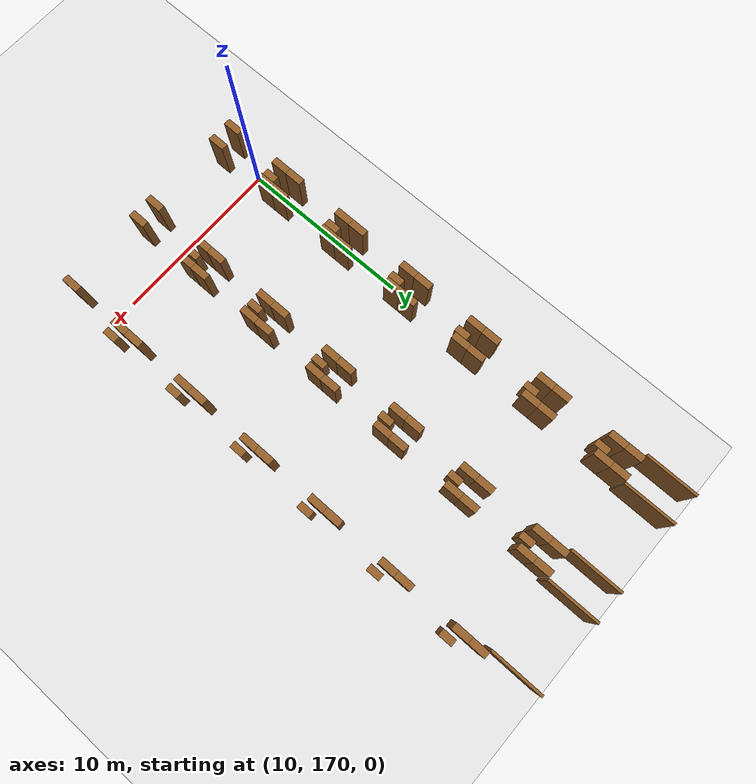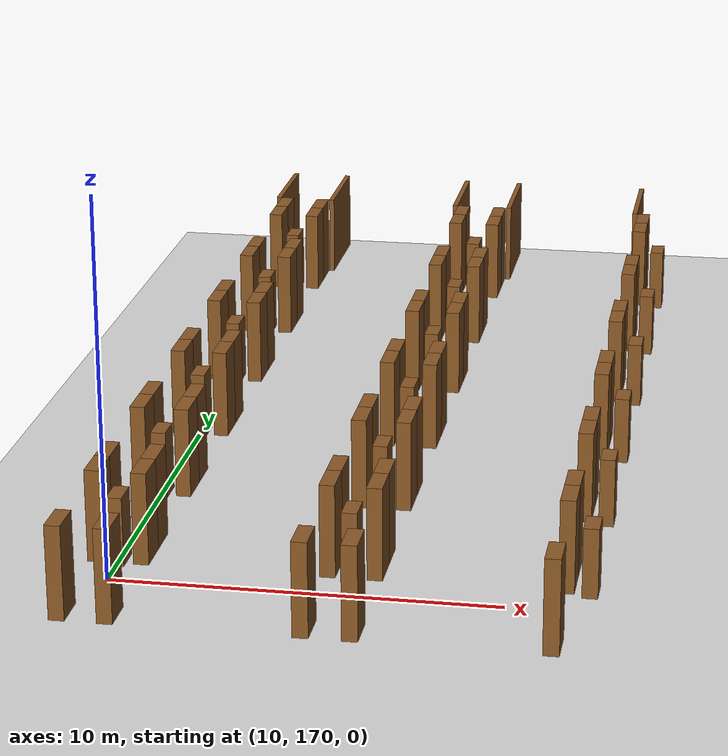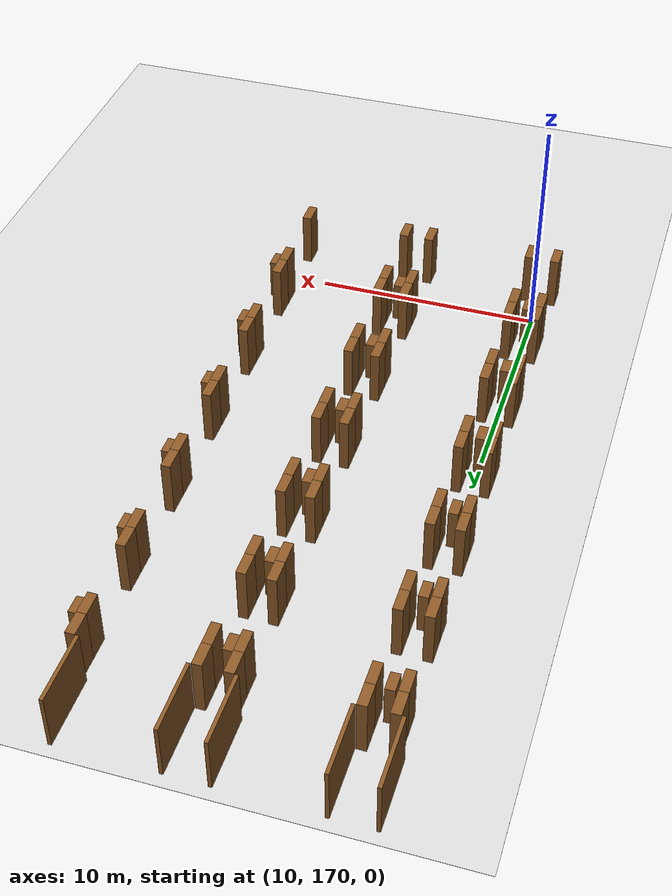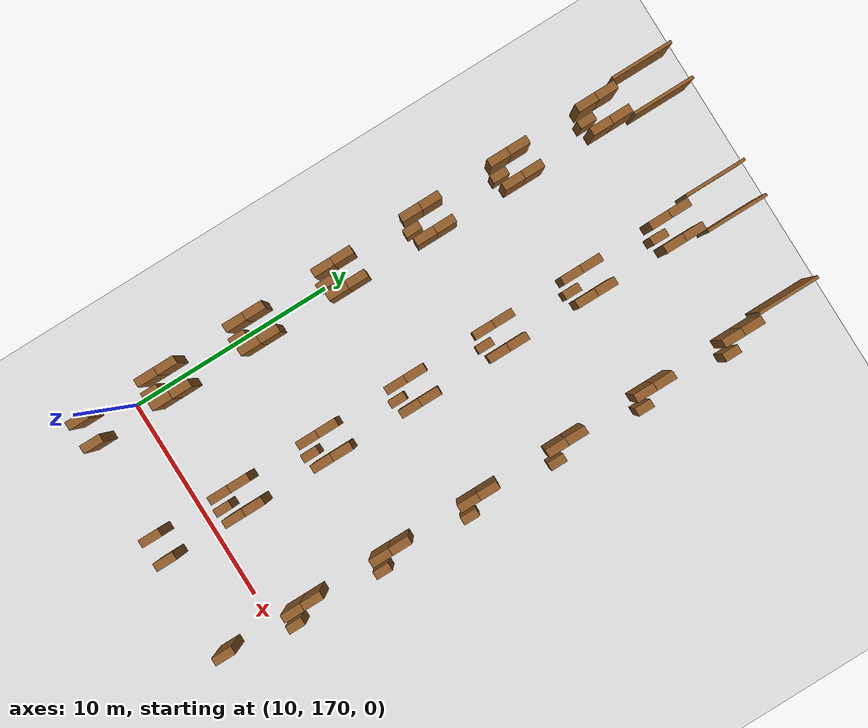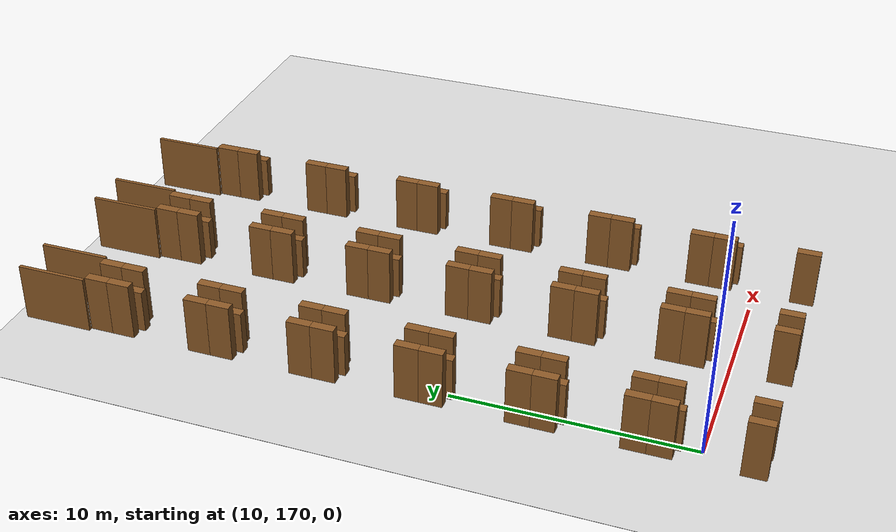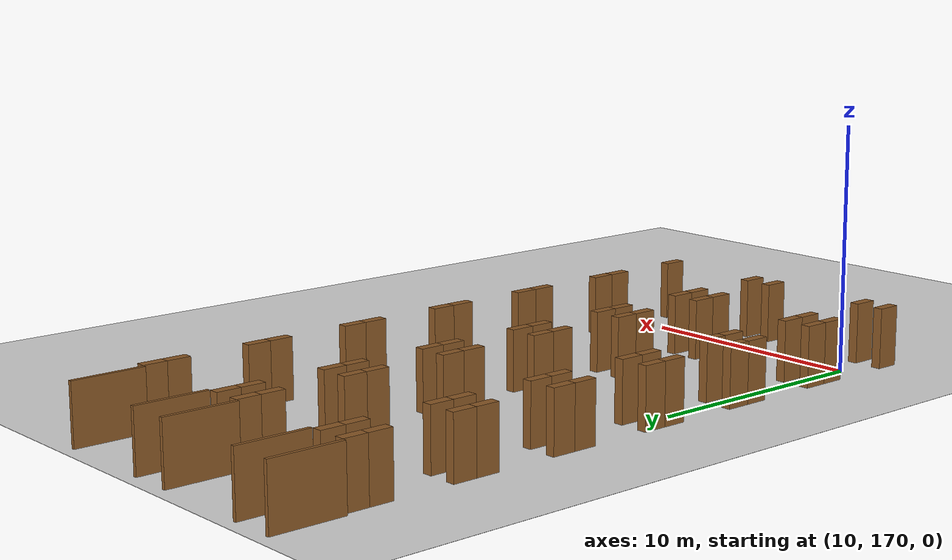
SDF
<sdf version="1.9">
 <world name="realistic_warehouse_150x200m">
  <model name="ground_plane">
   <static>true</static>
   <pose>68.5 102.0 0 0 0 0</pose>
   <link name="ground_link">
    <visual name="ground_visual">
     <geometry><box><size>127.0 194.0 0.01</size></box></geometry>
     <material><ambient>0.85 0.85 0.85 1.0</ambient><diffuse>0.85 0.85 0.85 1.0</diffuse></material>
    </visual>
    <collision name="ground_visual_collision">
     <geometry><box><size>127.0 194.0 0.01</size></box></geometry>
    </collision>
    <collision name="ground_collision">
     <geometry><plane><normal>0 0 1</normal><size>127.0 194.0</size></plane></geometry>
    </collision>
   </link>
  </model>
  <model name="rack_Zone_A_A0_S1_014">
   <static>true</static>
   <pose>9.4 168.0 1.25 0 0 0</pose>
   <link name="rack_Zone_A_A0_S1_014_link">
    <visual name="rack_Zone_A_A0_S1_014_vis">
     <geometry><box><size>0.4 1.0 2.5</size></box></geometry>
     <material><ambient>0.55 0.35 0.15 1.0</ambient><diffuse>0.55 0.35 0.15 1.0</diffuse></material>
    </visual>
    <collision name="rack_Zone_A_A0_S1_014_vis_collision">
     <geometry><box><size>0.4 1.0 2.5</size></box></geometry>
    </collision>
   </link>
  </model>
  <model name="rack_Zone_A_A0_S1_016">
   <static>true</static>
   <pose>10.6 168.0 1.25 0 0 0</pose>
   <link name="rack_Zone_A_A0_S1_016_link">
    <visual name="rack_Zone_A_A0_S1_016_vis">
     <geometry><box><size>0.4 1.0 2.5</size></box></geometry>
     <material><ambient>0.55 0.35 0.15 1.0</ambient><diffuse>0.55 0.35 0.15 1.0</diffuse></material>
    </visual>
    <collision name="rack_Zone_A_A0_S1_016_vis_collision">
     <geometry><box><size>0.4 1.0 2.5</size></box></geometry>
    </collision>
   </link>
  </model>
  <model name="rack_Zone_A_A0_S2_018">
   <static>true</static>
   <pose>9.4 171.5 1.25 0 0 0</pose>
   <link name="rack_Zone_A_A0_S2_018_link">
    <visual name="rack_Zone_A_A0_S2_018_vis">
     <geometry><box><size>0.4 1.0 2.5</size></box></geometry>
     <material><ambient>0.55 0.35 0.15 1.0</ambient><diffuse>0.55 0.35 0.15 1.0</diffuse></material>
    </visual>
    <collision name="rack_Zone_A_A0_S2_018_vis_collision">
     <geometry><box><size>0.4 1.0 2.5</size></box></geometry>
    </collision>
   </link>
  </model>
  <model name="rack_Zone_A_A0_S2_019">
   <static>true</static>
   <pose>9.4 172.5 1.25 0 0 0</pose>
   <link name="rack_Zone_A_A0_S2_019_link">
    <visual name="rack_Zone_A_A0_S2_019_vis">
     <geometry><box><size>0.4 1.0 2.5</size></box></geometry>
     <material><ambient>0.55 0.35 0.15 1.0</ambient><diffuse>0.55 0.35 0.15 1.0</diffuse></material>
    </visual>
    <collision name="rack_Zone_A_A0_S2_019_vis_collision">
     <geometry><box><size>0.4 1.0 2.5</size></box></geometry>
    </collision>
   </link>
  </model>
  <model name="rack_Zone_A_A0_S2_020">
   <static>true</static>
   <pose>10.6 171.5 1.25 0 0 0</pose>
   <link name="rack_Zone_A_A0_S2_020_link">
    <visual name="rack_Zone_A_A0_S2_020_vis">
     <geometry><box><size>0.4 1.0 2.5</size></box></geometry>
     <material><ambient>0.55 0.35 0.15 1.0</ambient><diffuse>0.55 0.35 0.15 1.0</diffuse></material>
    </visual>
    <collision name="rack_Zone_A_A0_S2_020_vis_collision">
     <geometry><box><size>0.4 1.0 2.5</size></box></geometry>
    </collision>
   </link>
  </model>
  <model name="rack_Zone_A_A0_S2_021">
   <static>true</static>
   <pose>10.6 172.5 1.25 0 0 0</pose>
   <link name="rack_Zone_A_A0_S2_021_link">
    <visual name="rack_Zone_A_A0_S2_021_vis">
     <geometry><box><size>0.4 1.0 2.5</size></box></geometry>
     <material><ambient>0.55 0.35 0.15 1.0</ambient><diffuse>0.55 0.35 0.15 1.0</diffuse></material>
    </visual>
    <collision name="rack_Zone_A_A0_S2_021_vis_collision">
     <geometry><box><size>0.4 1.0 2.5</size></box></geometry>
    </collision>
   </link>
  </model>
  <model name="rack_Zone_A_A0_S2_022">
   <static>true</static>
   <pose>10.0 171.2 0.9375 0 0 0</pose>
   <link name="rack_Zone_A_A0_S2_022_link">
    <visual name="rack_Zone_A_A0_S2_022_vis">
     <geometry><box><size>0.4 0.8 1.875</size></box></geometry>
     <material><ambient>0.55 0.35 0.15 1.0</ambient><diffuse>0.55 0.35 0.15 1.0</diffuse></material>
    </visual>
    <collision name="rack_Zone_A_A0_S2_022_vis_collision">
     <geometry><box><size>0.4 0.8 1.875</size></box></geometry>
    </collision>
   </link>
  </model>
  <model name="rack_Zone_A_A0_S3_023">
   <static>true</static>
   <pose>9.4 176.0 1.25 0 0 0</pose>
   <link name="rack_Zone_A_A0_S3_023_link">
    <visual name="rack_Zone_A_A0_S3_023_vis">
     <geometry><box><size>0.4 1.0 2.5</size></box></geometry>
     <material><ambient>0.55 0.35 0.15 1.0</ambient><diffuse>0.55 0.35 0.15 1.0</diffuse></material>
    </visual>
    <collision name="rack_Zone_A_A0_S3_023_vis_collision">
     <geometry><box><size>0.4 1.0 2.5</size></box></geometry>
    </collision>
   </link>
  </model>
  <model name="rack_Zone_A_A0_S3_024">
   <static>true</static>
   <pose>9.4 177.0 1.25 0 0 0</pose>
   <link name="rack_Zone_A_A0_S3_024_link">
    <visual name="rack_Zone_A_A0_S3_024_vis">
     <geometry><box><size>0.4 1.0 2.5</size></box></geometry>
     <material><ambient>0.55 0.35 0.15 1.0</ambient><diffuse>0.55 0.35 0.15 1.0</diffuse></material>
    </visual>
    <collision name="rack_Zone_A_A0_S3_024_vis_collision">
     <geometry><box><size>0.4 1.0 2.5</size></box></geometry>
    </collision>
   </link>
  </model>
  <model name="rack_Zone_A_A0_S3_025">
   <static>true</static>
   <pose>10.6 176.0 1.25 0 0 0</pose>
   <link name="rack_Zone_A_A0_S3_025_link">
    <visual name="rack_Zone_A_A0_S3_025_vis">
     <geometry><box><size>0.4 1.0 2.5</size></box></geometry>
     <material><ambient>0.55 0.35 0.15 1.0</ambient><diffuse>0.55 0.35 0.15 1.0</diffuse></material>
    </visual>
    <collision name="rack_Zone_A_A0_S3_025_vis_collision">
     <geometry><box><size>0.4 1.0 2.5</size></box></geometry>
    </collision>
   </link>
  </model>
  <model name="rack_Zone_A_A0_S3_026">
   <static>true</static>
   <pose>10.6 177.0 1.25 0 0 0</pose>
   <link name="rack_Zone_A_A0_S3_026_link">
    <visual name="rack_Zone_A_A0_S3_026_vis">
     <geometry><box><size>0.4 1.0 2.5</size></box></geometry>
     <material><ambient>0.55 0.35 0.15 1.0</ambient><diffuse>0.55 0.35 0.15 1.0</diffuse></material>
    </visual>
    <collision name="rack_Zone_A_A0_S3_026_vis_collision">
     <geometry><box><size>0.4 1.0 2.5</size></box></geometry>
    </collision>
   </link>
  </model>
  <model name="rack_Zone_A_A0_S3_027">
   <static>true</static>
   <pose>10.0 175.7 0.9375 0 0 0</pose>
   <link name="rack_Zone_A_A0_S3_027_link">
    <visual name="rack_Zone_A_A0_S3_027_vis">
     <geometry><box><size>0.4 0.8 1.875</size></box></geometry>
     <material><ambient>0.55 0.35 0.15 1.0</ambient><diffuse>0.55 0.35 0.15 1.0</diffuse></material>
    </visual>
    <collision name="rack_Zone_A_A0_S3_027_vis_collision">
     <geometry><box><size>0.4 0.8 1.875</size></box></geometry>
    </collision>
   </link>
  </model>
  <model name="rack_Zone_A_A0_S4_028">
   <static>true</static>
   <pose>9.4 180.5 1.25 0 0 0</pose>
   <link name="rack_Zone_A_A0_S4_028_link">
    <visual name="rack_Zone_A_A0_S4_028_vis">
     <geometry><box><size>0.4 1.0 2.5</size></box></geometry>
     <material><ambient>0.55 0.35 0.15 1.0</ambient><diffuse>0.55 0.35 0.15 1.0</diffuse></material>
    </visual>
    <collision name="rack_Zone_A_A0_S4_028_vis_collision">
     <geometry><box><size>0.4 1.0 2.5</size></box></geometry>
    </collision>
   </link>
  </model>
  <model name="rack_Zone_A_A0_S4_029">
   <static>true</static>
   <pose>9.4 181.5 1.25 0 0 0</pose>
   <link name="rack_Zone_A_A0_S4_029_link">
    <visual name="rack_Zone_A_A0_S4_029_vis">
     <geometry><box><size>0.4 1.0 2.5</size></box></geometry>
     <material><ambient>0.55 0.35 0.15 1.0</ambient><diffuse>0.55 0.35 0.15 1.0</diffuse></material>
    </visual>
    <collision name="rack_Zone_A_A0_S4_029_vis_collision">
     <geometry><box><size>0.4 1.0 2.5</size></box></geometry>
    </collision>
   </link>
  </model>
  <model name="rack_Zone_A_A0_S4_030">
   <static>true</static>
   <pose>10.6 180.5 1.25 0 0 0</pose>
   <link name="rack_Zone_A_A0_S4_030_link">
    <visual name="rack_Zone_A_A0_S4_030_vis">
     <geometry><box><size>0.4 1.0 2.5</size></box></geometry>
     <material><ambient>0.55 0.35 0.15 1.0</ambient><diffuse>0.55 0.35 0.15 1.0</diffuse></material>
    </visual>
    <collision name="rack_Zone_A_A0_S4_030_vis_collision">
     <geometry><box><size>0.4 1.0 2.5</size></box></geometry>
    </collision>
   </link>
  </model>
  <model name="rack_Zone_A_A0_S4_031">
   <static>true</static>
   <pose>10.6 181.5 1.25 0 0 0</pose>
   <link name="rack_Zone_A_A0_S4_031_link">
    <visual name="rack_Zone_A_A0_S4_031_vis">
     <geometry><box><size>0.4 1.0 2.5</size></box></geometry>
     <material><ambient>0.55 0.35 0.15 1.0</ambient><diffuse>0.55 0.35 0.15 1.0</diffuse></material>
    </visual>
    <collision name="rack_Zone_A_A0_S4_031_vis_collision">
     <geometry><box><size>0.4 1.0 2.5</size></box></geometry>
    </collision>
   </link>
  </model>
  <model name="rack_Zone_A_A0_S4_032">
   <static>true</static>
   <pose>10.0 180.2 0.9375 0 0 0</pose>
   <link name="rack_Zone_A_A0_S4_032_link">
    <visual name="rack_Zone_A_A0_S4_032_vis">
     <geometry><box><size>0.4 0.8 1.875</size></box></geometry>
     <material><ambient>0.55 0.35 0.15 1.0</ambient><diffuse>0.55 0.35 0.15 1.0</diffuse></material>
    </visual>
    <collision name="rack_Zone_A_A0_S4_032_vis_collision">
     <geometry><box><size>0.4 0.8 1.875</size></box></geometry>
    </collision>
   </link>
  </model>
  <model name="rack_Zone_A_A0_S5_033">
   <static>true</static>
   <pose>9.4 185.0 1.25 0 0 0</pose>
   <link name="rack_Zone_A_A0_S5_033_link">
    <visual name="rack_Zone_A_A0_S5_033_vis">
     <geometry><box><size>0.4 1.0 2.5</size></box></geometry>
     <material><ambient>0.55 0.35 0.15 1.0</ambient><diffuse>0.55 0.35 0.15 1.0</diffuse></material>
    </visual>
    <collision name="rack_Zone_A_A0_S5_033_vis_collision">
     <geometry><box><size>0.4 1.0 2.5</size></box></geometry>
    </collision>
   </link>
  </model>
  <model name="rack_Zone_A_A0_S5_034">
   <static>true</static>
   <pose>9.4 186.0 1.25 0 0 0</pose>
   <link name="rack_Zone_A_A0_S5_034_link">
    <visual name="rack_Zone_A_A0_S5_034_vis">
     <geometry><box><size>0.4 1.0 2.5</size></box></geometry>
     <material><ambient>0.55 0.35 0.15 1.0</ambient><diffuse>0.55 0.35 0.15 1.0</diffuse></material>
    </visual>
    <collision name="rack_Zone_A_A0_S5_034_vis_collision">
     <geometry><box><size>0.4 1.0 2.5</size></box></geometry>
    </collision>
   </link>
  </model>
  <model name="rack_Zone_A_A0_S5_035">
   <static>true</static>
   <pose>10.6 185.0 1.25 0 0 0</pose>
   <link name="rack_Zone_A_A0_S5_035_link">
    <visual name="rack_Zone_A_A0_S5_035_vis">
     <geometry><box><size>0.4 1.0 2.5</size></box></geometry>
     <material><ambient>0.55 0.35 0.15 1.0</ambient><diffuse>0.55 0.35 0.15 1.0</diffuse></material>
    </visual>
    <collision name="rack_Zone_A_A0_S5_035_vis_collision">
     <geometry><box><size>0.4 1.0 2.5</size></box></geometry>
    </collision>
   </link>
  </model>
  <model name="rack_Zone_A_A0_S5_036">
   <static>true</static>
   <pose>10.6 186.0 1.25 0 0 0</pose>
   <link name="rack_Zone_A_A0_S5_036_link">
    <visual name="rack_Zone_A_A0_S5_036_vis">
     <geometry><box><size>0.4 1.0 2.5</size></box></geometry>
     <material><ambient>0.55 0.35 0.15 1.0</ambient><diffuse>0.55 0.35 0.15 1.0</diffuse></material>
    </visual>
    <collision name="rack_Zone_A_A0_S5_036_vis_collision">
     <geometry><box><size>0.4 1.0 2.5</size></box></geometry>
    </collision>
   </link>
  </model>
  <model name="rack_Zone_A_A0_S5_037">
   <static>true</static>
   <pose>10.0 184.7 0.9375 0 0 0</pose>
   <link name="rack_Zone_A_A0_S5_037_link">
    <visual name="rack_Zone_A_A0_S5_037_vis">
     <geometry><box><size>0.4 0.8 1.875</size></box></geometry>
     <material><ambient>0.55 0.35 0.15 1.0</ambient><diffuse>0.55 0.35 0.15 1.0</diffuse></material>
    </visual>
    <collision name="rack_Zone_A_A0_S5_037_vis_collision">
     <geometry><box><size>0.4 0.8 1.875</size></box></geometry>
    </collision>
   </link>
  </model>
  <model name="rack_Zone_A_A0_S6_038">
   <static>true</static>
   <pose>9.4 189.5 1.25 0 0 0</pose>
   <link name="rack_Zone_A_A0_S6_038_link">
    <visual name="rack_Zone_A_A0_S6_038_vis">
     <geometry><box><size>0.4 1.0 2.5</size></box></geometry>
     <material><ambient>0.55 0.35 0.15 1.0</ambient><diffuse>0.55 0.35 0.15 1.0</diffuse></material>
    </visual>
    <collision name="rack_Zone_A_A0_S6_038_vis_collision">
     <geometry><box><size>0.4 1.0 2.5</size></box></geometry>
    </collision>
   </link>
  </model>
  <model name="rack_Zone_A_A0_S6_039">
   <static>true</static>
   <pose>9.4 190.5 1.25 0 0 0</pose>
   <link name="rack_Zone_A_A0_S6_039_link">
    <visual name="rack_Zone_A_A0_S6_039_vis">
     <geometry><box><size>0.4 1.0 2.5</size></box></geometry>
     <material><ambient>0.55 0.35 0.15 1.0</ambient><diffuse>0.55 0.35 0.15 1.0</diffuse></material>
    </visual>
    <collision name="rack_Zone_A_A0_S6_039_vis_collision">
     <geometry><box><size>0.4 1.0 2.5</size></box></geometry>
    </collision>
   </link>
  </model>
  <model name="rack_Zone_A_A0_S6_040">
   <static>true</static>
   <pose>10.6 189.5 1.25 0 0 0</pose>
   <link name="rack_Zone_A_A0_S6_040_link">
    <visual name="rack_Zone_A_A0_S6_040_vis">
     <geometry><box><size>0.4 1.0 2.5</size></box></geometry>
     <material><ambient>0.55 0.35 0.15 1.0</ambient><diffuse>0.55 0.35 0.15 1.0</diffuse></material>
    </visual>
    <collision name="rack_Zone_A_A0_S6_040_vis_collision">
     <geometry><box><size>0.4 1.0 2.5</size></box></geometry>
    </collision>
   </link>
  </model>
  <model name="rack_Zone_A_A0_S6_041">
   <static>true</static>
   <pose>10.6 190.5 1.25 0 0 0</pose>
   <link name="rack_Zone_A_A0_S6_041_link">
    <visual name="rack_Zone_A_A0_S6_041_vis">
     <geometry><box><size>0.4 1.0 2.5</size></box></geometry>
     <material><ambient>0.55 0.35 0.15 1.0</ambient><diffuse>0.55 0.35 0.15 1.0</diffuse></material>
    </visual>
    <collision name="rack_Zone_A_A0_S6_041_vis_collision">
     <geometry><box><size>0.4 1.0 2.5</size></box></geometry>
    </collision>
   </link>
  </model>
  <model name="rack_Zone_A_A0_S6_042">
   <static>true</static>
   <pose>10.0 189.2 0.9375 0 0 0</pose>
   <link name="rack_Zone_A_A0_S6_042_link">
    <visual name="rack_Zone_A_A0_S6_042_vis">
     <geometry><box><size>0.4 0.8 1.875</size></box></geometry>
     <material><ambient>0.55 0.35 0.15 1.0</ambient><diffuse>0.55 0.35 0.15 1.0</diffuse></material>
    </visual>
    <collision name="rack_Zone_A_A0_S6_042_vis_collision">
     <geometry><box><size>0.4 0.8 1.875</size></box></geometry>
    </collision>
   </link>
  </model>
  <model name="rack_Zone_A_A0_S7_043">
   <static>true</static>
   <pose>9.4 194.0 1.25 0 0 0</pose>
   <link name="rack_Zone_A_A0_S7_043_link">
    <visual name="rack_Zone_A_A0_S7_043_vis">
     <geometry><box><size>0.4 1.0 2.5</size></box></geometry>
     <material><ambient>0.55 0.35 0.15 1.0</ambient><diffuse>0.55 0.35 0.15 1.0</diffuse></material>
    </visual>
    <collision name="rack_Zone_A_A0_S7_043_vis_collision">
     <geometry><box><size>0.4 1.0 2.5</size></box></geometry>
    </collision>
   </link>
  </model>
  <model name="rack_Zone_A_A0_S7_044">
   <static>true</static>
   <pose>9.4 195.0 1.25 0 0 0</pose>
   <link name="rack_Zone_A_A0_S7_044_link">
    <visual name="rack_Zone_A_A0_S7_044_vis">
     <geometry><box><size>0.4 1.0 2.5</size></box></geometry>
     <material><ambient>0.55 0.35 0.15 1.0</ambient><diffuse>0.55 0.35 0.15 1.0</diffuse></material>
    </visual>
    <collision name="rack_Zone_A_A0_S7_044_vis_collision">
     <geometry><box><size>0.4 1.0 2.5</size></box></geometry>
    </collision>
   </link>
  </model>
  <model name="rack_Zone_A_A0_S7_045">
   <static>true</static>
   <pose>10.6 194.0 1.25 0 0 0</pose>
   <link name="rack_Zone_A_A0_S7_045_link">
    <visual name="rack_Zone_A_A0_S7_045_vis">
     <geometry><box><size>0.4 1.0 2.5</size></box></geometry>
     <material><ambient>0.55 0.35 0.15 1.0</ambient><diffuse>0.55 0.35 0.15 1.0</diffuse></material>
    </visual>
    <collision name="rack_Zone_A_A0_S7_045_vis_collision">
     <geometry><box><size>0.4 1.0 2.5</size></box></geometry>
    </collision>
   </link>
  </model>
  <model name="rack_Zone_A_A0_S7_046">
   <static>true</static>
   <pose>10.6 195.0 1.25 0 0 0</pose>
   <link name="rack_Zone_A_A0_S7_046_link">
    <visual name="rack_Zone_A_A0_S7_046_vis">
     <geometry><box><size>0.4 1.0 2.5</size></box></geometry>
     <material><ambient>0.55 0.35 0.15 1.0</ambient><diffuse>0.55 0.35 0.15 1.0</diffuse></material>
    </visual>
    <collision name="rack_Zone_A_A0_S7_046_vis_collision">
     <geometry><box><size>0.4 1.0 2.5</size></box></geometry>
    </collision>
   </link>
  </model>
  <model name="rack_Zone_A_A0_S7_047">
   <static>true</static>
   <pose>10.0 193.7 0.9375 0 0 0</pose>
   <link name="rack_Zone_A_A0_S7_047_link">
    <visual name="rack_Zone_A_A0_S7_047_vis">
     <geometry><box><size>0.4 0.8 1.875</size></box></geometry>
     <material><ambient>0.55 0.35 0.15 1.0</ambient><diffuse>0.55 0.35 0.15 1.0</diffuse></material>
    </visual>
    <collision name="rack_Zone_A_A0_S7_047_vis_collision">
     <geometry><box><size>0.4 0.8 1.875</size></box></geometry>
    </collision>
   </link>
  </model>
  <model name="aisle_L_Zone_A_A0_exit_048">
   <static>true</static>
   <pose>9.1 197.0 1.25 0 0 0</pose>
   <link name="aisle_L_Zone_A_A0_exit_048_link">
    <visual name="aisle_L_Zone_A_A0_exit_048_vis">
     <geometry><box><size>0.15 3.0 2.5</size></box></geometry>
     <material><ambient>0.55 0.35 0.15 1.0</ambient><diffuse>0.55 0.35 0.15 1.0</diffuse></material>
    </visual>
    <collision name="aisle_L_Zone_A_A0_exit_048_vis_collision">
     <geometry><box><size>0.15 3.0 2.5</size></box></geometry>
    </collision>
   </link>
  </model>
  <model name="aisle_R_Zone_A_A0_exit_049">
   <static>true</static>
   <pose>10.9 197.0 1.25 0 0 0</pose>
   <link name="aisle_R_Zone_A_A0_exit_049_link">
    <visual name="aisle_R_Zone_A_A0_exit_049_vis">
     <geometry><box><size>0.15 3.0 2.5</size></box></geometry>
     <material><ambient>0.55 0.35 0.15 1.0</ambient><diffuse>0.55 0.35 0.15 1.0</diffuse></material>
    </visual>
    <collision name="aisle_R_Zone_A_A0_exit_049_vis_collision">
     <geometry><box><size>0.15 3.0 2.5</size></box></geometry>
    </collision>
   </link>
  </model>
  <model name="rack_Zone_A_A1_S1_058">
   <static>true</static>
   <pose>15.4 168.0 1.25 0 0 0</pose>
   <link name="rack_Zone_A_A1_S1_058_link">
    <visual name="rack_Zone_A_A1_S1_058_vis">
     <geometry><box><size>0.4 1.0 2.5</size></box></geometry>
     <material><ambient>0.55 0.35 0.15 1.0</ambient><diffuse>0.55 0.35 0.15 1.0</diffuse></material>
    </visual>
    <collision name="rack_Zone_A_A1_S1_058_vis_collision">
     <geometry><box><size>0.4 1.0 2.5</size></box></geometry>
    </collision>
   </link>
  </model>
  <model name="rack_Zone_A_A1_S1_060">
   <static>true</static>
   <pose>16.6 168.0 1.25 0 0 0</pose>
   <link name="rack_Zone_A_A1_S1_060_link">
    <visual name="rack_Zone_A_A1_S1_060_vis">
     <geometry><box><size>0.4 1.0 2.5</size></box></geometry>
     <material><ambient>0.55 0.35 0.15 1.0</ambient><diffuse>0.55 0.35 0.15 1.0</diffuse></material>
    </visual>
    <collision name="rack_Zone_A_A1_S1_060_vis_collision">
     <geometry><box><size>0.4 1.0 2.5</size></box></geometry>
    </collision>
   </link>
  </model>
  <model name="rack_Zone_A_A1_S2_062">
   <static>true</static>
   <pose>15.4 171.5 1.25 0 0 0</pose>
   <link name="rack_Zone_A_A1_S2_062_link">
    <visual name="rack_Zone_A_A1_S2_062_vis">
     <geometry><box><size>0.4 1.0 2.5</size></box></geometry>
     <material><ambient>0.55 0.35 0.15 1.0</ambient><diffuse>0.55 0.35 0.15 1.0</diffuse></material>
    </visual>
    <collision name="rack_Zone_A_A1_S2_062_vis_collision">
     <geometry><box><size>0.4 1.0 2.5</size></box></geometry>
    </collision>
   </link>
  </model>
  <model name="rack_Zone_A_A1_S2_063">
   <static>true</static>
   <pose>15.4 172.5 1.25 0 0 0</pose>
   <link name="rack_Zone_A_A1_S2_063_link">
    <visual name="rack_Zone_A_A1_S2_063_vis">
     <geometry><box><size>0.4 1.0 2.5</size></box></geometry>
     <material><ambient>0.55 0.35 0.15 1.0</ambient><diffuse>0.55 0.35 0.15 1.0</diffuse></material>
    </visual>
    <collision name="rack_Zone_A_A1_S2_063_vis_collision">
     <geometry><box><size>0.4 1.0 2.5</size></box></geometry>
    </collision>
   </link>
  </model>
  <model name="rack_Zone_A_A1_S2_064">
   <static>true</static>
   <pose>16.6 171.5 1.25 0 0 0</pose>
   <link name="rack_Zone_A_A1_S2_064_link">
    <visual name="rack_Zone_A_A1_S2_064_vis">
     <geometry><box><size>0.4 1.0 2.5</size></box></geometry>
     <material><ambient>0.55 0.35 0.15 1.0</ambient><diffuse>0.55 0.35 0.15 1.0</diffuse></material>
    </visual>
    <collision name="rack_Zone_A_A1_S2_064_vis_collision">
     <geometry><box><size>0.4 1.0 2.5</size></box></geometry>
    </collision>
   </link>
  </model>
  <model name="rack_Zone_A_A1_S2_065">
   <static>true</static>
   <pose>16.6 172.5 1.25 0 0 0</pose>
   <link name="rack_Zone_A_A1_S2_065_link">
    <visual name="rack_Zone_A_A1_S2_065_vis">
     <geometry><box><size>0.4 1.0 2.5</size></box></geometry>
     <material><ambient>0.55 0.35 0.15 1.0</ambient><diffuse>0.55 0.35 0.15 1.0</diffuse></material>
    </visual>
    <collision name="rack_Zone_A_A1_S2_065_vis_collision">
     <geometry><box><size>0.4 1.0 2.5</size></box></geometry>
    </collision>
   </link>
  </model>
  <model name="rack_Zone_A_A1_S2_066">
   <static>true</static>
   <pose>16.0 171.2 0.9375 0 0 0</pose>
   <link name="rack_Zone_A_A1_S2_066_link">
    <visual name="rack_Zone_A_A1_S2_066_vis">
     <geometry><box><size>0.4 0.8 1.875</size></box></geometry>
     <material><ambient>0.55 0.35 0.15 1.0</ambient><diffuse>0.55 0.35 0.15 1.0</diffuse></material>
    </visual>
    <collision name="rack_Zone_A_A1_S2_066_vis_collision">
     <geometry><box><size>0.4 0.8 1.875</size></box></geometry>
    </collision>
   </link>
  </model>
  <model name="rack_Zone_A_A1_S3_067">
   <static>true</static>
   <pose>15.4 176.0 1.25 0 0 0</pose>
   <link name="rack_Zone_A_A1_S3_067_link">
    <visual name="rack_Zone_A_A1_S3_067_vis">
     <geometry><box><size>0.4 1.0 2.5</size></box></geometry>
     <material><ambient>0.55 0.35 0.15 1.0</ambient><diffuse>0.55 0.35 0.15 1.0</diffuse></material>
    </visual>
    <collision name="rack_Zone_A_A1_S3_067_vis_collision">
     <geometry><box><size>0.4 1.0 2.5</size></box></geometry>
    </collision>
   </link>
  </model>
  <model name="rack_Zone_A_A1_S3_068">
   <static>true</static>
   <pose>15.4 177.0 1.25 0 0 0</pose>
   <link name="rack_Zone_A_A1_S3_068_link">
    <visual name="rack_Zone_A_A1_S3_068_vis">
     <geometry><box><size>0.4 1.0 2.5</size></box></geometry>
     <material><ambient>0.55 0.35 0.15 1.0</ambient><diffuse>0.55 0.35 0.15 1.0</diffuse></material>
    </visual>
    <collision name="rack_Zone_A_A1_S3_068_vis_collision">
     <geometry><box><size>0.4 1.0 2.5</size></box></geometry>
    </collision>
   </link>
  </model>
  <model name="rack_Zone_A_A1_S3_069">
   <static>true</static>
   <pose>16.6 176.0 1.25 0 0 0</pose>
   <link name="rack_Zone_A_A1_S3_069_link">
    <visual name="rack_Zone_A_A1_S3_069_vis">
     <geometry><box><size>0.4 1.0 2.5</size></box></geometry>
     <material><ambient>0.55 0.35 0.15 1.0</ambient><diffuse>0.55 0.35 0.15 1.0</diffuse></material>
    </visual>
    <collision name="rack_Zone_A_A1_S3_069_vis_collision">
     <geometry><box><size>0.4 1.0 2.5</size></box></geometry>
    </collision>
   </link>
  </model>
  <model name="rack_Zone_A_A1_S3_070">
   <static>true</static>
   <pose>16.6 177.0 1.25 0 0 0</pose>
   <link name="rack_Zone_A_A1_S3_070_link">
    <visual name="rack_Zone_A_A1_S3_070_vis">
     <geometry><box><size>0.4 1.0 2.5</size></box></geometry>
     <material><ambient>0.55 0.35 0.15 1.0</ambient><diffuse>0.55 0.35 0.15 1.0</diffuse></material>
    </visual>
    <collision name="rack_Zone_A_A1_S3_070_vis_collision">
     <geometry><box><size>0.4 1.0 2.5</size></box></geometry>
    </collision>
   </link>
  </model>
  <model name="rack_Zone_A_A1_S3_071">
   <static>true</static>
   <pose>16.0 175.7 0.9375 0 0 0</pose>
   <link name="rack_Zone_A_A1_S3_071_link">
    <visual name="rack_Zone_A_A1_S3_071_vis">
     <geometry><box><size>0.4 0.8 1.875</size></box></geometry>
     <material><ambient>0.55 0.35 0.15 1.0</ambient><diffuse>0.55 0.35 0.15 1.0</diffuse></material>
    </visual>
    <collision name="rack_Zone_A_A1_S3_071_vis_collision">
     <geometry><box><size>0.4 0.8 1.875</size></box></geometry>
    </collision>
   </link>
  </model>
  <model name="rack_Zone_A_A1_S4_072">
   <static>true</static>
   <pose>15.4 180.5 1.25 0 0 0</pose>
   <link name="rack_Zone_A_A1_S4_072_link">
    <visual name="rack_Zone_A_A1_S4_072_vis">
     <geometry><box><size>0.4 1.0 2.5</size></box></geometry>
     <material><ambient>0.55 0.35 0.15 1.0</ambient><diffuse>0.55 0.35 0.15 1.0</diffuse></material>
    </visual>
    <collision name="rack_Zone_A_A1_S4_072_vis_collision">
     <geometry><box><size>0.4 1.0 2.5</size></box></geometry>
    </collision>
   </link>
  </model>
  <model name="rack_Zone_A_A1_S4_073">
   <static>true</static>
   <pose>15.4 181.5 1.25 0 0 0</pose>
   <link name="rack_Zone_A_A1_S4_073_link">
    <visual name="rack_Zone_A_A1_S4_073_vis">
     <geometry><box><size>0.4 1.0 2.5</size></box></geometry>
     <material><ambient>0.55 0.35 0.15 1.0</ambient><diffuse>0.55 0.35 0.15 1.0</diffuse></material>
    </visual>
    <collision name="rack_Zone_A_A1_S4_073_vis_collision">
     <geometry><box><size>0.4 1.0 2.5</size></box></geometry>
    </collision>
   </link>
  </model>
  <model name="rack_Zone_A_A1_S4_074">
   <static>true</static>
   <pose>16.6 180.5 1.25 0 0 0</pose>
   <link name="rack_Zone_A_A1_S4_074_link">
    <visual name="rack_Zone_A_A1_S4_074_vis">
     <geometry><box><size>0.4 1.0 2.5</size></box></geometry>
     <material><ambient>0.55 0.35 0.15 1.0</ambient><diffuse>0.55 0.35 0.15 1.0</diffuse></material>
    </visual>
    <collision name="rack_Zone_A_A1_S4_074_vis_collision">
     <geometry><box><size>0.4 1.0 2.5</size></box></geometry>
    </collision>
   </link>
  </model>
  <model name="rack_Zone_A_A1_S4_075">
   <static>true</static>
   <pose>16.6 181.5 1.25 0 0 0</pose>
   <link name="rack_Zone_A_A1_S4_075_link">
    <visual name="rack_Zone_A_A1_S4_075_vis">
     <geometry><box><size>0.4 1.0 2.5</size></box></geometry>
     <material><ambient>0.55 0.35 0.15 1.0</ambient><diffuse>0.55 0.35 0.15 1.0</diffuse></material>
    </visual>
    <collision name="rack_Zone_A_A1_S4_075_vis_collision">
     <geometry><box><size>0.4 1.0 2.5</size></box></geometry>
    </collision>
   </link>
  </model>
  <model name="rack_Zone_A_A1_S4_076">
   <static>true</static>
   <pose>16.0 180.2 0.9375 0 0 0</pose>
   <link name="rack_Zone_A_A1_S4_076_link">
    <visual name="rack_Zone_A_A1_S4_076_vis">
     <geometry><box><size>0.4 0.8 1.875</size></box></geometry>
     <material><ambient>0.55 0.35 0.15 1.0</ambient><diffuse>0.55 0.35 0.15 1.0</diffuse></material>
    </visual>
    <collision name="rack_Zone_A_A1_S4_076_vis_collision">
     <geometry><box><size>0.4 0.8 1.875</size></box></geometry>
    </collision>
   </link>
  </model>
  <model name="rack_Zone_A_A1_S5_077">
   <static>true</static>
   <pose>15.4 185.0 1.25 0 0 0</pose>
   <link name="rack_Zone_A_A1_S5_077_link">
    <visual name="rack_Zone_A_A1_S5_077_vis">
     <geometry><box><size>0.4 1.0 2.5</size></box></geometry>
     <material><ambient>0.55 0.35 0.15 1.0</ambient><diffuse>0.55 0.35 0.15 1.0</diffuse></material>
    </visual>
    <collision name="rack_Zone_A_A1_S5_077_vis_collision">
     <geometry><box><size>0.4 1.0 2.5</size></box></geometry>
    </collision>
   </link>
  </model>
  <model name="rack_Zone_A_A1_S5_078">
   <static>true</static>
   <pose>15.4 186.0 1.25 0 0 0</pose>
   <link name="rack_Zone_A_A1_S5_078_link">
    <visual name="rack_Zone_A_A1_S5_078_vis">
     <geometry><box><size>0.4 1.0 2.5</size></box></geometry>
     <material><ambient>0.55 0.35 0.15 1.0</ambient><diffuse>0.55 0.35 0.15 1.0</diffuse></material>
    </visual>
    <collision name="rack_Zone_A_A1_S5_078_vis_collision">
     <geometry><box><size>0.4 1.0 2.5</size></box></geometry>
    </collision>
   </link>
  </model>
  <model name="rack_Zone_A_A1_S5_079">
   <static>true</static>
   <pose>16.6 185.0 1.25 0 0 0</pose>
   <link name="rack_Zone_A_A1_S5_079_link">
    <visual name="rack_Zone_A_A1_S5_079_vis">
     <geometry><box><size>0.4 1.0 2.5</size></box></geometry>
     <material><ambient>0.55 0.35 0.15 1.0</ambient><diffuse>0.55 0.35 0.15 1.0</diffuse></material>
    </visual>
    <collision name="rack_Zone_A_A1_S5_079_vis_collision">
     <geometry><box><size>0.4 1.0 2.5</size></box></geometry>
    </collision>
   </link>
  </model>
  <model name="rack_Zone_A_A1_S5_080">
   <static>true</static>
   <pose>16.6 186.0 1.25 0 0 0</pose>
   <link name="rack_Zone_A_A1_S5_080_link">
    <visual name="rack_Zone_A_A1_S5_080_vis">
     <geometry><box><size>0.4 1.0 2.5</size></box></geometry>
     <material><ambient>0.55 0.35 0.15 1.0</ambient><diffuse>0.55 0.35 0.15 1.0</diffuse></material>
    </visual>
    <collision name="rack_Zone_A_A1_S5_080_vis_collision">
     <geometry><box><size>0.4 1.0 2.5</size></box></geometry>
    </collision>
   </link>
  </model>
  <model name="rack_Zone_A_A1_S5_081">
   <static>true</static>
   <pose>16.0 184.7 0.9375 0 0 0</pose>
   <link name="rack_Zone_A_A1_S5_081_link">
    <visual name="rack_Zone_A_A1_S5_081_vis">
     <geometry><box><size>0.4 0.8 1.875</size></box></geometry>
     <material><ambient>0.55 0.35 0.15 1.0</ambient><diffuse>0.55 0.35 0.15 1.0</diffuse></material>
    </visual>
    <collision name="rack_Zone_A_A1_S5_081_vis_collision">
     <geometry><box><size>0.4 0.8 1.875</size></box></geometry>
    </collision>
   </link>
  </model>
  <model name="rack_Zone_A_A1_S6_082">
   <static>true</static>
   <pose>15.4 189.5 1.25 0 0 0</pose>
   <link name="rack_Zone_A_A1_S6_082_link">
    <visual name="rack_Zone_A_A1_S6_082_vis">
     <geometry><box><size>0.4 1.0 2.5</size></box></geometry>
     <material><ambient>0.55 0.35 0.15 1.0</ambient><diffuse>0.55 0.35 0.15 1.0</diffuse></material>
    </visual>
    <collision name="rack_Zone_A_A1_S6_082_vis_collision">
     <geometry><box><size>0.4 1.0 2.5</size></box></geometry>
    </collision>
   </link>
  </model>
  <model name="rack_Zone_A_A1_S6_083">
   <static>true</static>
   <pose>15.4 190.5 1.25 0 0 0</pose>
   <link name="rack_Zone_A_A1_S6_083_link">
    <visual name="rack_Zone_A_A1_S6_083_vis">
     <geometry><box><size>0.4 1.0 2.5</size></box></geometry>
     <material><ambient>0.55 0.35 0.15 1.0</ambient><diffuse>0.55 0.35 0.15 1.0</diffuse></material>
    </visual>
    <collision name="rack_Zone_A_A1_S6_083_vis_collision">
     <geometry><box><size>0.4 1.0 2.5</size></box></geometry>
    </collision>
   </link>
  </model>
  <model name="rack_Zone_A_A1_S6_084">
   <static>true</static>
   <pose>16.6 189.5 1.25 0 0 0</pose>
   <link name="rack_Zone_A_A1_S6_084_link">
    <visual name="rack_Zone_A_A1_S6_084_vis">
     <geometry><box><size>0.4 1.0 2.5</size></box></geometry>
     <material><ambient>0.55 0.35 0.15 1.0</ambient><diffuse>0.55 0.35 0.15 1.0</diffuse></material>
    </visual>
    <collision name="rack_Zone_A_A1_S6_084_vis_collision">
     <geometry><box><size>0.4 1.0 2.5</size></box></geometry>
    </collision>
   </link>
  </model>
  <model name="rack_Zone_A_A1_S6_085">
   <static>true</static>
   <pose>16.6 190.5 1.25 0 0 0</pose>
   <link name="rack_Zone_A_A1_S6_085_link">
    <visual name="rack_Zone_A_A1_S6_085_vis">
     <geometry><box><size>0.4 1.0 2.5</size></box></geometry>
     <material><ambient>0.55 0.35 0.15 1.0</ambient><diffuse>0.55 0.35 0.15 1.0</diffuse></material>
    </visual>
    <collision name="rack_Zone_A_A1_S6_085_vis_collision">
     <geometry><box><size>0.4 1.0 2.5</size></box></geometry>
    </collision>
   </link>
  </model>
  <model name="rack_Zone_A_A1_S6_086">
   <static>true</static>
   <pose>16.0 189.2 0.9375 0 0 0</pose>
   <link name="rack_Zone_A_A1_S6_086_link">
    <visual name="rack_Zone_A_A1_S6_086_vis">
     <geometry><box><size>0.4 0.8 1.875</size></box></geometry>
     <material><ambient>0.55 0.35 0.15 1.0</ambient><diffuse>0.55 0.35 0.15 1.0</diffuse></material>
    </visual>
    <collision name="rack_Zone_A_A1_S6_086_vis_collision">
     <geometry><box><size>0.4 0.8 1.875</size></box></geometry>
    </collision>
   </link>
  </model>
  <model name="rack_Zone_A_A1_S7_087">
   <static>true</static>
   <pose>15.4 194.0 1.25 0 0 0</pose>
   <link name="rack_Zone_A_A1_S7_087_link">
    <visual name="rack_Zone_A_A1_S7_087_vis">
     <geometry><box><size>0.4 1.0 2.5</size></box></geometry>
     <material><ambient>0.55 0.35 0.15 1.0</ambient><diffuse>0.55 0.35 0.15 1.0</diffuse></material>
    </visual>
    <collision name="rack_Zone_A_A1_S7_087_vis_collision">
     <geometry><box><size>0.4 1.0 2.5</size></box></geometry>
    </collision>
   </link>
  </model>
  <model name="rack_Zone_A_A1_S7_088">
   <static>true</static>
   <pose>15.4 195.0 1.25 0 0 0</pose>
   <link name="rack_Zone_A_A1_S7_088_link">
    <visual name="rack_Zone_A_A1_S7_088_vis">
     <geometry><box><size>0.4 1.0 2.5</size></box></geometry>
     <material><ambient>0.55 0.35 0.15 1.0</ambient><diffuse>0.55 0.35 0.15 1.0</diffuse></material>
    </visual>
    <collision name="rack_Zone_A_A1_S7_088_vis_collision">
     <geometry><box><size>0.4 1.0 2.5</size></box></geometry>
    </collision>
   </link>
  </model>
  <model name="rack_Zone_A_A1_S7_089">
   <static>true</static>
   <pose>16.6 194.0 1.25 0 0 0</pose>
   <link name="rack_Zone_A_A1_S7_089_link">
    <visual name="rack_Zone_A_A1_S7_089_vis">
     <geometry><box><size>0.4 1.0 2.5</size></box></geometry>
     <material><ambient>0.55 0.35 0.15 1.0</ambient><diffuse>0.55 0.35 0.15 1.0</diffuse></material>
    </visual>
    <collision name="rack_Zone_A_A1_S7_089_vis_collision">
     <geometry><box><size>0.4 1.0 2.5</size></box></geometry>
    </collision>
   </link>
  </model>
  <model name="rack_Zone_A_A1_S7_090">
   <static>true</static>
   <pose>16.6 195.0 1.25 0 0 0</pose>
   <link name="rack_Zone_A_A1_S7_090_link">
    <visual name="rack_Zone_A_A1_S7_090_vis">
     <geometry><box><size>0.4 1.0 2.5</size></box></geometry>
     <material><ambient>0.55 0.35 0.15 1.0</ambient><diffuse>0.55 0.35 0.15 1.0</diffuse></material>
    </visual>
    <collision name="rack_Zone_A_A1_S7_090_vis_collision">
     <geometry><box><size>0.4 1.0 2.5</size></box></geometry>
    </collision>
   </link>
  </model>
  <model name="rack_Zone_A_A1_S7_091">
   <static>true</static>
   <pose>16.0 193.7 0.9375 0 0 0</pose>
   <link name="rack_Zone_A_A1_S7_091_link">
    <visual name="rack_Zone_A_A1_S7_091_vis">
     <geometry><box><size>0.4 0.8 1.875</size></box></geometry>
     <material><ambient>0.55 0.35 0.15 1.0</ambient><diffuse>0.55 0.35 0.15 1.0</diffuse></material>
    </visual>
    <collision name="rack_Zone_A_A1_S7_091_vis_collision">
     <geometry><box><size>0.4 0.8 1.875</size></box></geometry>
    </collision>
   </link>
  </model>
  <model name="aisle_L_Zone_A_A1_exit_092">
   <static>true</static>
   <pose>15.1 197.0 1.25 0 0 0</pose>
   <link name="aisle_L_Zone_A_A1_exit_092_link">
    <visual name="aisle_L_Zone_A_A1_exit_092_vis">
     <geometry><box><size>0.15 3.0 2.5</size></box></geometry>
     <material><ambient>0.55 0.35 0.15 1.0</ambient><diffuse>0.55 0.35 0.15 1.0</diffuse></material>
    </visual>
    <collision name="aisle_L_Zone_A_A1_exit_092_vis_collision">
     <geometry><box><size>0.15 3.0 2.5</size></box></geometry>
    </collision>
   </link>
  </model>
  <model name="aisle_R_Zone_A_A1_exit_093">
   <static>true</static>
   <pose>16.9 197.0 1.25 0 0 0</pose>
   <link name="aisle_R_Zone_A_A1_exit_093_link">
    <visual name="aisle_R_Zone_A_A1_exit_093_vis">
     <geometry><box><size>0.15 3.0 2.5</size></box></geometry>
     <material><ambient>0.55 0.35 0.15 1.0</ambient><diffuse>0.55 0.35 0.15 1.0</diffuse></material>
    </visual>
    <collision name="aisle_R_Zone_A_A1_exit_093_vis_collision">
     <geometry><box><size>0.15 3.0 2.5</size></box></geometry>
    </collision>
   </link>
  </model>
  <model name="rack_Zone_A_A2_S1_102">
   <static>true</static>
   <pose>21.4 168.0 1.25 0 0 0</pose>
   <link name="rack_Zone_A_A2_S1_102_link">
    <visual name="rack_Zone_A_A2_S1_102_vis">
     <geometry><box><size>0.4 1.0 2.5</size></box></geometry>
     <material><ambient>0.55 0.35 0.15 1.0</ambient><diffuse>0.55 0.35 0.15 1.0</diffuse></material>
    </visual>
    <collision name="rack_Zone_A_A2_S1_102_vis_collision">
     <geometry><box><size>0.4 1.0 2.5</size></box></geometry>
    </collision>
   </link>
  </model>
  <model name="rack_Zone_A_A2_S2_106">
   <static>true</static>
   <pose>21.4 171.5 1.25 0 0 0</pose>
   <link name="rack_Zone_A_A2_S2_106_link">
    <visual name="rack_Zone_A_A2_S2_106_vis">
     <geometry><box><size>0.4 1.0 2.5</size></box></geometry>
     <material><ambient>0.55 0.35 0.15 1.0</ambient><diffuse>0.55 0.35 0.15 1.0</diffuse></material>
    </visual>
    <collision name="rack_Zone_A_A2_S2_106_vis_collision">
     <geometry><box><size>0.4 1.0 2.5</size></box></geometry>
    </collision>
   </link>
  </model>
  <model name="rack_Zone_A_A2_S2_107">
   <static>true</static>
   <pose>21.4 172.5 1.25 0 0 0</pose>
   <link name="rack_Zone_A_A2_S2_107_link">
    <visual name="rack_Zone_A_A2_S2_107_vis">
     <geometry><box><size>0.4 1.0 2.5</size></box></geometry>
     <material><ambient>0.55 0.35 0.15 1.0</ambient><diffuse>0.55 0.35 0.15 1.0</diffuse></material>
    </visual>
    <collision name="rack_Zone_A_A2_S2_107_vis_collision">
     <geometry><box><size>0.4 1.0 2.5</size></box></geometry>
    </collision>
   </link>
  </model>
  <model name="rack_Zone_A_A2_S2_110">
   <static>true</static>
   <pose>22.0 171.2 0.9375 0 0 0</pose>
   <link name="rack_Zone_A_A2_S2_110_link">
    <visual name="rack_Zone_A_A2_S2_110_vis">
     <geometry><box><size>0.4 0.8 1.875</size></box></geometry>
     <material><ambient>0.55 0.35 0.15 1.0</ambient><diffuse>0.55 0.35 0.15 1.0</diffuse></material>
    </visual>
    <collision name="rack_Zone_A_A2_S2_110_vis_collision">
     <geometry><box><size>0.4 0.8 1.875</size></box></geometry>
    </collision>
   </link>
  </model>
  <model name="rack_Zone_A_A2_S3_111">
   <static>true</static>
   <pose>21.4 176.0 1.25 0 0 0</pose>
   <link name="rack_Zone_A_A2_S3_111_link">
    <visual name="rack_Zone_A_A2_S3_111_vis">
     <geometry><box><size>0.4 1.0 2.5</size></box></geometry>
     <material><ambient>0.55 0.35 0.15 1.0</ambient><diffuse>0.55 0.35 0.15 1.0</diffuse></material>
    </visual>
    <collision name="rack_Zone_A_A2_S3_111_vis_collision">
     <geometry><box><size>0.4 1.0 2.5</size></box></geometry>
    </collision>
   </link>
  </model>
  <model name="rack_Zone_A_A2_S3_112">
   <static>true</static>
   <pose>21.4 177.0 1.25 0 0 0</pose>
   <link name="rack_Zone_A_A2_S3_112_link">
    <visual name="rack_Zone_A_A2_S3_112_vis">
     <geometry><box><size>0.4 1.0 2.5</size></box></geometry>
     <material><ambient>0.55 0.35 0.15 1.0</ambient><diffuse>0.55 0.35 0.15 1.0</diffuse></material>
    </visual>
    <collision name="rack_Zone_A_A2_S3_112_vis_collision">
     <geometry><box><size>0.4 1.0 2.5</size></box></geometry>
    </collision>
   </link>
  </model>
  <model name="rack_Zone_A_A2_S3_115">
   <static>true</static>
   <pose>22.0 175.7 0.9375 0 0 0</pose>
   <link name="rack_Zone_A_A2_S3_115_link">
    <visual name="rack_Zone_A_A2_S3_115_vis">
     <geometry><box><size>0.4 0.8 1.875</size></box></geometry>
     <material><ambient>0.55 0.35 0.15 1.0</ambient><diffuse>0.55 0.35 0.15 1.0</diffuse></material>
    </visual>
    <collision name="rack_Zone_A_A2_S3_115_vis_collision">
     <geometry><box><size>0.4 0.8 1.875</size></box></geometry>
    </collision>
   </link>
  </model>
  <model name="rack_Zone_A_A2_S4_116">
   <static>true</static>
   <pose>21.4 180.5 1.25 0 0 0</pose>
   <link name="rack_Zone_A_A2_S4_116_link">
    <visual name="rack_Zone_A_A2_S4_116_vis">
     <geometry><box><size>0.4 1.0 2.5</size></box></geometry>
     <material><ambient>0.55 0.35 0.15 1.0</ambient><diffuse>0.55 0.35 0.15 1.0</diffuse></material>
    </visual>
    <collision name="rack_Zone_A_A2_S4_116_vis_collision">
     <geometry><box><size>0.4 1.0 2.5</size></box></geometry>
    </collision>
   </link>
  </model>
  <model name="rack_Zone_A_A2_S4_117">
   <static>true</static>
   <pose>21.4 181.5 1.25 0 0 0</pose>
   <link name="rack_Zone_A_A2_S4_117_link">
    <visual name="rack_Zone_A_A2_S4_117_vis">
     <geometry><box><size>0.4 1.0 2.5</size></box></geometry>
     <material><ambient>0.55 0.35 0.15 1.0</ambient><diffuse>0.55 0.35 0.15 1.0</diffuse></material>
    </visual>
    <collision name="rack_Zone_A_A2_S4_117_vis_collision">
     <geometry><box><size>0.4 1.0 2.5</size></box></geometry>
    </collision>
   </link>
  </model>
  <model name="rack_Zone_A_A2_S4_120">
   <static>true</static>
   <pose>22.0 180.2 0.9375 0 0 0</pose>
   <link name="rack_Zone_A_A2_S4_120_link">
    <visual name="rack_Zone_A_A2_S4_120_vis">
     <geometry><box><size>0.4 0.8 1.875</size></box></geometry>
     <material><ambient>0.55 0.35 0.15 1.0</ambient><diffuse>0.55 0.35 0.15 1.0</diffuse></material>
    </visual>
    <collision name="rack_Zone_A_A2_S4_120_vis_collision">
     <geometry><box><size>0.4 0.8 1.875</size></box></geometry>
    </collision>
   </link>
  </model>
  <model name="rack_Zone_A_A2_S5_121">
   <static>true</static>
   <pose>21.4 185.0 1.25 0 0 0</pose>
   <link name="rack_Zone_A_A2_S5_121_link">
    <visual name="rack_Zone_A_A2_S5_121_vis">
     <geometry><box><size>0.4 1.0 2.5</size></box></geometry>
     <material><ambient>0.55 0.35 0.15 1.0</ambient><diffuse>0.55 0.35 0.15 1.0</diffuse></material>
    </visual>
    <collision name="rack_Zone_A_A2_S5_121_vis_collision">
     <geometry><box><size>0.4 1.0 2.5</size></box></geometry>
    </collision>
   </link>
  </model>
  <model name="rack_Zone_A_A2_S5_122">
   <static>true</static>
   <pose>21.4 186.0 1.25 0 0 0</pose>
   <link name="rack_Zone_A_A2_S5_122_link">
    <visual name="rack_Zone_A_A2_S5_122_vis">
     <geometry><box><size>0.4 1.0 2.5</size></box></geometry>
     <material><ambient>0.55 0.35 0.15 1.0</ambient><diffuse>0.55 0.35 0.15 1.0</diffuse></material>
    </visual>
    <collision name="rack_Zone_A_A2_S5_122_vis_collision">
     <geometry><box><size>0.4 1.0 2.5</size></box></geometry>
    </collision>
   </link>
  </model>
  <model name="rack_Zone_A_A2_S5_125">
   <static>true</static>
   <pose>22.0 184.7 0.9375 0 0 0</pose>
   <link name="rack_Zone_A_A2_S5_125_link">
    <visual name="rack_Zone_A_A2_S5_125_vis">
     <geometry><box><size>0.4 0.8 1.875</size></box></geometry>
     <material><ambient>0.55 0.35 0.15 1.0</ambient><diffuse>0.55 0.35 0.15 1.0</diffuse></material>
    </visual>
    <collision name="rack_Zone_A_A2_S5_125_vis_collision">
     <geometry><box><size>0.4 0.8 1.875</size></box></geometry>
    </collision>
   </link>
  </model>
  <model name="rack_Zone_A_A2_S6_126">
   <static>true</static>
   <pose>21.4 189.5 1.25 0 0 0</pose>
   <link name="rack_Zone_A_A2_S6_126_link">
    <visual name="rack_Zone_A_A2_S6_126_vis">
     <geometry><box><size>0.4 1.0 2.5</size></box></geometry>
     <material><ambient>0.55 0.35 0.15 1.0</ambient><diffuse>0.55 0.35 0.15 1.0</diffuse></material>
    </visual>
    <collision name="rack_Zone_A_A2_S6_126_vis_collision">
     <geometry><box><size>0.4 1.0 2.5</size></box></geometry>
    </collision>
   </link>
  </model>
  <model name="rack_Zone_A_A2_S6_127">
   <static>true</static>
   <pose>21.4 190.5 1.25 0 0 0</pose>
   <link name="rack_Zone_A_A2_S6_127_link">
    <visual name="rack_Zone_A_A2_S6_127_vis">
     <geometry><box><size>0.4 1.0 2.5</size></box></geometry>
     <material><ambient>0.55 0.35 0.15 1.0</ambient><diffuse>0.55 0.35 0.15 1.0</diffuse></material>
    </visual>
    <collision name="rack_Zone_A_A2_S6_127_vis_collision">
     <geometry><box><size>0.4 1.0 2.5</size></box></geometry>
    </collision>
   </link>
  </model>
  <model name="rack_Zone_A_A2_S6_130">
   <static>true</static>
   <pose>22.0 189.2 0.9375 0 0 0</pose>
   <link name="rack_Zone_A_A2_S6_130_link">
    <visual name="rack_Zone_A_A2_S6_130_vis">
     <geometry><box><size>0.4 0.8 1.875</size></box></geometry>
     <material><ambient>0.55 0.35 0.15 1.0</ambient><diffuse>0.55 0.35 0.15 1.0</diffuse></material>
    </visual>
    <collision name="rack_Zone_A_A2_S6_130_vis_collision">
     <geometry><box><size>0.4 0.8 1.875</size></box></geometry>
    </collision>
   </link>
  </model>
  <model name="rack_Zone_A_A2_S7_131">
   <static>true</static>
   <pose>21.4 194.0 1.25 0 0 0</pose>
   <link name="rack_Zone_A_A2_S7_131_link">
    <visual name="rack_Zone_A_A2_S7_131_vis">
     <geometry><box><size>0.4 1.0 2.5</size></box></geometry>
     <material><ambient>0.55 0.35 0.15 1.0</ambient><diffuse>0.55 0.35 0.15 1.0</diffuse></material>
    </visual>
    <collision name="rack_Zone_A_A2_S7_131_vis_collision">
     <geometry><box><size>0.4 1.0 2.5</size></box></geometry>
    </collision>
   </link>
  </model>
  <model name="rack_Zone_A_A2_S7_132">
   <static>true</static>
   <pose>21.4 195.0 1.25 0 0 0</pose>
   <link name="rack_Zone_A_A2_S7_132_link">
    <visual name="rack_Zone_A_A2_S7_132_vis">
     <geometry><box><size>0.4 1.0 2.5</size></box></geometry>
     <material><ambient>0.55 0.35 0.15 1.0</ambient><diffuse>0.55 0.35 0.15 1.0</diffuse></material>
    </visual>
    <collision name="rack_Zone_A_A2_S7_132_vis_collision">
     <geometry><box><size>0.4 1.0 2.5</size></box></geometry>
    </collision>
   </link>
  </model>
  <model name="rack_Zone_A_A2_S7_135">
   <static>true</static>
   <pose>22.0 193.7 0.9375 0 0 0</pose>
   <link name="rack_Zone_A_A2_S7_135_link">
    <visual name="rack_Zone_A_A2_S7_135_vis">
     <geometry><box><size>0.4 0.8 1.875</size></box></geometry>
     <material><ambient>0.55 0.35 0.15 1.0</ambient><diffuse>0.55 0.35 0.15 1.0</diffuse></material>
    </visual>
    <collision name="rack_Zone_A_A2_S7_135_vis_collision">
     <geometry><box><size>0.4 0.8 1.875</size></box></geometry>
    </collision>
   </link>
  </model>
  <model name="aisle_L_Zone_A_A2_exit_136">
   <static>true</static>
   <pose>21.1 197.0 1.25 0 0 0</pose>
   <link name="aisle_L_Zone_A_A2_exit_136_link">
    <visual name="aisle_L_Zone_A_A2_exit_136_vis">
     <geometry><box><size>0.15 3.0 2.5</size></box></geometry>
     <material><ambient>0.55 0.35 0.15 1.0</ambient><diffuse>0.55 0.35 0.15 1.0</diffuse></material>
    </visual>
    <collision name="aisle_L_Zone_A_A2_exit_136_vis_collision">
     <geometry><box><size>0.15 3.0 2.5</size></box></geometry>
    </collision>
   </link>
  </model>
 </world>
</sdf>
